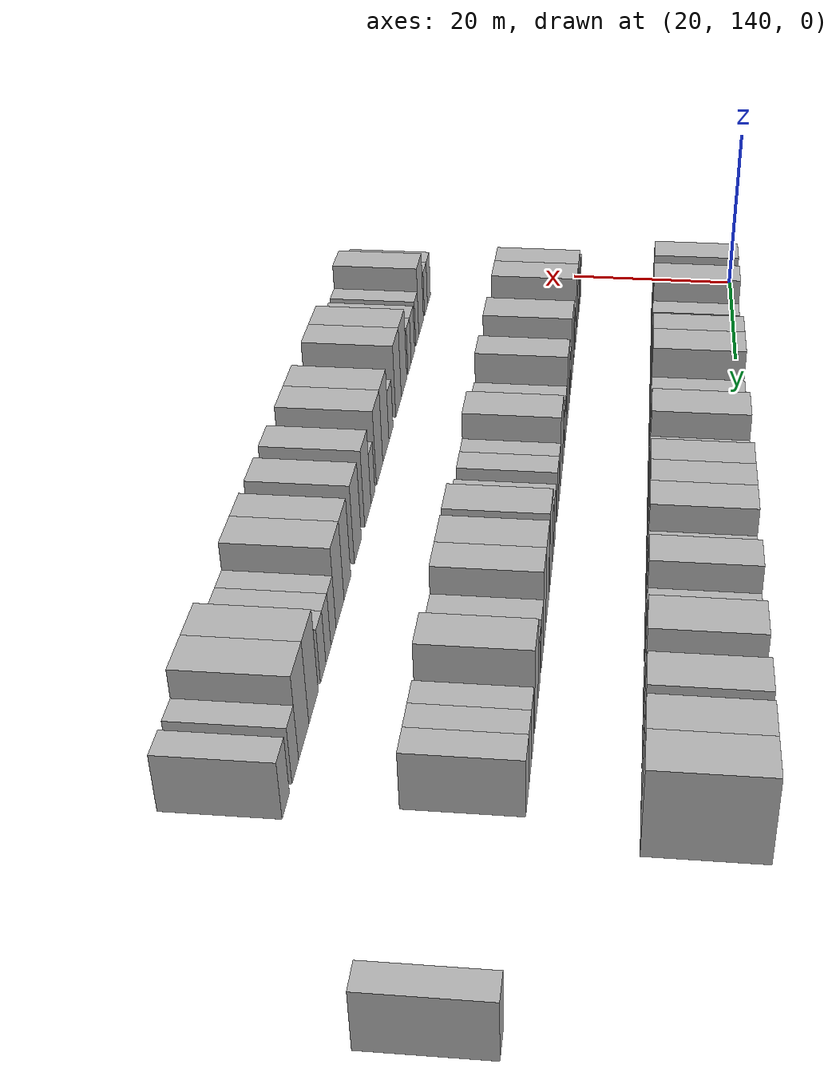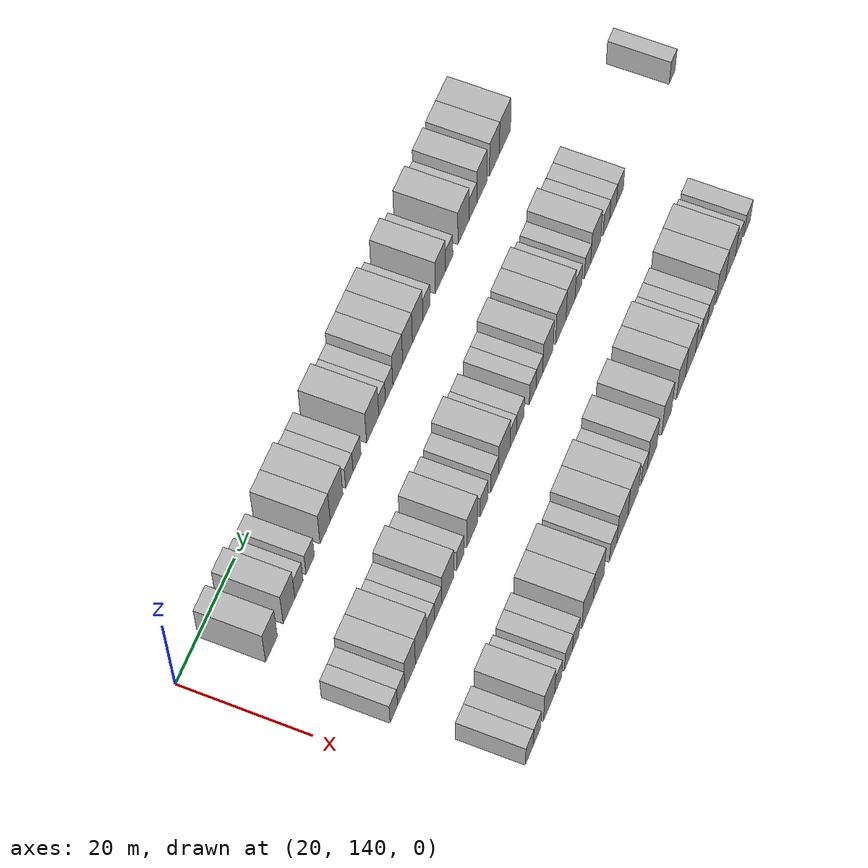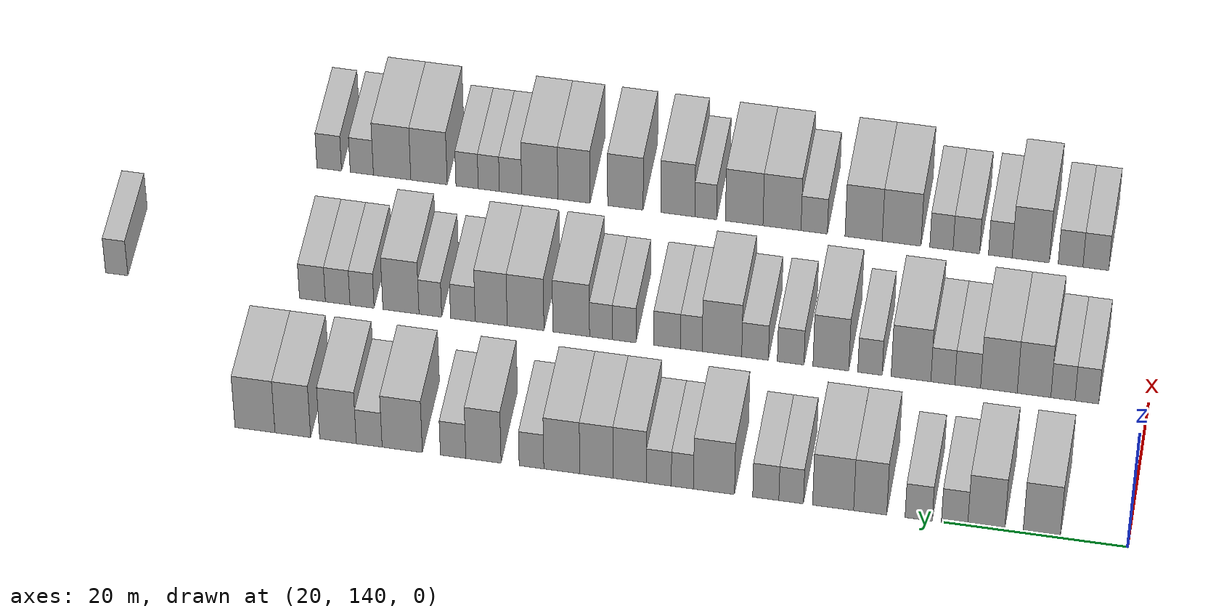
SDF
<sdf version="1.6">
 <world name="default">
  <model name="building_102">
   <static>1</static>
   <pose>25.0000 149.4287 0 0.000000 0.000000 0.000000</pose>
   <link name="link">
    <pose>0 0 4.50 0 0 0</pose>
    <collision name="collision"><geometry><box><size>10.0000 4.0342 9.0000</size></box></geometry></collision>
    <visual name="visual">
     <cast_shadows>0</cast_shadows>
     <geometry><box><size>10.0000 4.0342 9.0000</size></box></geometry>
     <material>
      <script>
       <uri>model://HANNAS_wall/materials/scripts</uri>
       <uri>model://HANNAS_wall/materials/textures</uri>
       <name>vrc/HANNAS_wall</name>
      </script>
     </material>
    </visual>
   </link>
  </model>
  <model name="building_103">
   <static>1</static>
   <pose>25.0000 155.4526 0 0.000000 0.000000 0.000000</pose>
   <link name="link">
    <pose>0 0 4.50 0 0 0</pose>
    <collision name="collision"><geometry><box><size>10.0000 4.0135 9.0000</size></box></geometry></collision>
    <visual name="visual">
     <cast_shadows>0</cast_shadows>
     <geometry><box><size>10.0000 4.0135 9.0000</size></box></geometry>
     <material>
      <script>
       <uri>model://HANNAS_wall/materials/scripts</uri>
       <uri>model://HANNAS_wall/materials/textures</uri>
       <name>vrc/HANNAS_wall</name>
      </script>
     </material>
    </visual>
   </link>
  </model>
  <model name="building_104">
   <static>1</static>
   <pose>25.0000 158.8937 0 0.000000 0.000000 0.000000</pose>
   <link name="link">
    <pose>0 0 3.00 0 0 0</pose>
    <collision name="collision"><geometry><box><size>10.0000 2.8687 6.0000</size></box></geometry></collision>
    <visual name="visual">
     <cast_shadows>0</cast_shadows>
     <geometry><box><size>10.0000 2.8687 6.0000</size></box></geometry>
     <material>
      <script>
       <uri>model://HANNAS_wall/materials/scripts</uri>
       <uri>model://HANNAS_wall/materials/textures</uri>
       <name>vrc/HANNAS_wall</name>
      </script>
     </material>
    </visual>
   </link>
  </model>
  <model name="building_105">
   <static>1</static>
   <pose>25.0000 162.8089 0 0.000000 0.000000 0.000000</pose>
   <link name="link">
    <pose>0 0 3.00 0 0 0</pose>
    <collision name="collision"><geometry><box><size>10.0000 2.9617 6.0000</size></box></geometry></collision>
    <visual name="visual">
     <cast_shadows>0</cast_shadows>
     <geometry><box><size>10.0000 2.9617 6.0000</size></box></geometry>
     <material>
      <script>
       <uri>model://HANNAS_wall/materials/scripts</uri>
       <uri>model://HANNAS_wall/materials/textures</uri>
       <name>vrc/HANNAS_wall</name>
      </script>
     </material>
    </visual>
   </link>
  </model>
  <model name="building_106">
   <static>1</static>
   <pose>25.0000 168.0981 0 0.000000 0.000000 0.000000</pose>
   <link name="link">
    <pose>0 0 4.50 0 0 0</pose>
    <collision name="collision"><geometry><box><size>10.0000 3.6167 9.0000</size></box></geometry></collision>
    <visual name="visual">
     <cast_shadows>0</cast_shadows>
     <geometry><box><size>10.0000 3.6167 9.0000</size></box></geometry>
     <material>
      <script>
       <uri>model://HANNAS_wall/materials/scripts</uri>
       <uri>model://HANNAS_wall/materials/textures</uri>
       <name>vrc/HANNAS_wall</name>
      </script>
     </material>
    </visual>
   </link>
  </model>
  <model name="building_107">
   <static>1</static>
   <pose>25.0000 172.1519 0 0.000000 0.000000 0.000000</pose>
   <link name="link">
    <pose>0 0 4.50 0 0 0</pose>
    <collision name="collision"><geometry><box><size>10.0000 4.4907 9.0000</size></box></geometry></collision>
    <visual name="visual">
     <cast_shadows>0</cast_shadows>
     <geometry><box><size>10.0000 4.4907 9.0000</size></box></geometry>
     <material>
      <script>
       <uri>model://HANNAS_wall/materials/scripts</uri>
       <uri>model://HANNAS_wall/materials/textures</uri>
       <name>vrc/HANNAS_wall</name>
      </script>
     </material>
    </visual>
   </link>
  </model>
  <model name="building_108">
   <static>1</static>
   <pose>25.0000 176.7450 0 0.000000 0.000000 0.000000</pose>
   <link name="link">
    <pose>0 0 3.00 0 0 0</pose>
    <collision name="collision"><geometry><box><size>10.0000 2.6954 6.0000</size></box></geometry></collision>
    <visual name="visual">
     <cast_shadows>0</cast_shadows>
     <geometry><box><size>10.0000 2.6954 6.0000</size></box></geometry>
     <material>
      <script>
       <uri>model://HANNAS_wall/materials/scripts</uri>
       <uri>model://HANNAS_wall/materials/textures</uri>
       <name>vrc/HANNAS_wall</name>
      </script>
     </material>
    </visual>
   </link>
  </model>
  <model name="building_109">
   <static>1</static>
   <pose>25.0000 179.5265 0 0.000000 0.000000 0.000000</pose>
   <link name="link">
    <pose>0 0 3.00 0 0 0</pose>
    <collision name="collision"><geometry><box><size>10.0000 2.8677 6.0000</size></box></geometry></collision>
    <visual name="visual">
     <cast_shadows>0</cast_shadows>
     <geometry><box><size>10.0000 2.8677 6.0000</size></box></geometry>
     <material>
      <script>
       <uri>model://HANNAS_wall/materials/scripts</uri>
       <uri>model://HANNAS_wall/materials/textures</uri>
       <name>vrc/HANNAS_wall</name>
      </script>
     </material>
    </visual>
   </link>
  </model>
  <model name="building_110">
   <static>1</static>
   <pose>25.0000 185.2100 0 0.000000 0.000000 0.000000</pose>
   <link name="link">
    <pose>0 0 4.50 0 0 0</pose>
    <collision name="collision"><geometry><box><size>10.0000 4.4993 9.0000</size></box></geometry></collision>
    <visual name="visual">
     <cast_shadows>0</cast_shadows>
     <geometry><box><size>10.0000 4.4993 9.0000</size></box></geometry>
     <material>
      <script>
       <uri>model://HANNAS_wall/materials/scripts</uri>
       <uri>model://HANNAS_wall/materials/textures</uri>
       <name>vrc/HANNAS_wall</name>
      </script>
     </material>
    </visual>
   </link>
  </model>
  <model name="building_111">
   <static>1</static>
   <pose>25.0000 188.6798 0 0.000000 0.000000 0.000000</pose>
   <link name="link">
    <pose>0 0 3.00 0 0 0</pose>
    <collision name="collision"><geometry><box><size>10.0000 2.4403 6.0000</size></box></geometry></collision>
    <visual name="visual">
     <cast_shadows>0</cast_shadows>
     <geometry><box><size>10.0000 2.4403 6.0000</size></box></geometry>
     <material>
      <script>
       <uri>model://HANNAS_wall/materials/scripts</uri>
       <uri>model://HANNAS_wall/materials/textures</uri>
       <name>vrc/HANNAS_wall</name>
      </script>
     </material>
    </visual>
   </link>
  </model>
  <model name="building_112">
   <static>1</static>
   <pose>25.0000 191.2703 0 0.000000 0.000000 0.000000</pose>
   <link name="link">
    <pose>0 0 3.00 0 0 0</pose>
    <collision name="collision"><geometry><box><size>10.0000 2.7408 6.0000</size></box></geometry></collision>
    <visual name="visual">
     <cast_shadows>0</cast_shadows>
     <geometry><box><size>10.0000 2.7408 6.0000</size></box></geometry>
     <material>
      <script>
       <uri>model://HANNAS_wall/materials/scripts</uri>
       <uri>model://HANNAS_wall/materials/textures</uri>
       <name>vrc/HANNAS_wall</name>
      </script>
     </material>
    </visual>
   </link>
  </model>
  <model name="building_113">
   <static>1</static>
   <pose>25.0000 194.4860 0 0.000000 0.000000 0.000000</pose>
   <link name="link">
    <pose>0 0 4.50 0 0 0</pose>
    <collision name="collision"><geometry><box><size>10.0000 3.6906 9.0000</size></box></geometry></collision>
    <visual name="visual">
     <cast_shadows>0</cast_shadows>
     <geometry><box><size>10.0000 3.6906 9.0000</size></box></geometry>
     <material>
      <script>
       <uri>model://HANNAS_wall/materials/scripts</uri>
       <uri>model://HANNAS_wall/materials/textures</uri>
       <name>vrc/HANNAS_wall</name>
      </script>
     </material>
    </visual>
   </link>
  </model>
  <model name="building_114">
   <static>1</static>
   <pose>25.0000 198.1640 0 0.000000 0.000000 0.000000</pose>
   <link name="link">
    <pose>0 0 4.50 0 0 0</pose>
    <collision name="collision"><geometry><box><size>10.0000 3.6653 9.0000</size></box></geometry></collision>
    <visual name="visual">
     <cast_shadows>0</cast_shadows>
     <geometry><box><size>10.0000 3.6653 9.0000</size></box></geometry>
     <material>
      <script>
       <uri>model://HANNAS_wall/materials/scripts</uri>
       <uri>model://HANNAS_wall/materials/textures</uri>
       <name>vrc/HANNAS_wall</name>
      </script>
     </material>
    </visual>
   </link>
  </model>
  <model name="building_115">
   <static>1</static>
   <pose>25.0000 201.9775 0 0.000000 0.000000 0.000000</pose>
   <link name="link">
    <pose>0 0 4.50 0 0 0</pose>
    <collision name="collision"><geometry><box><size>10.0000 3.9618 9.0000</size></box></geometry></collision>
    <visual name="visual">
     <cast_shadows>0</cast_shadows>
     <geometry><box><size>10.0000 3.9618 9.0000</size></box></geometry>
     <material>
      <script>
       <uri>model://HANNAS_wall/materials/scripts</uri>
       <uri>model://HANNAS_wall/materials/textures</uri>
       <name>vrc/HANNAS_wall</name>
      </script>
     </material>
    </visual>
   </link>
  </model>
  <model name="building_116">
   <static>1</static>
   <pose>25.0000 205.3219 0 0.000000 0.000000 0.000000</pose>
   <link name="link">
    <pose>0 0 3.00 0 0 0</pose>
    <collision name="collision"><geometry><box><size>10.0000 2.7269 6.0000</size></box></geometry></collision>
    <visual name="visual">
     <cast_shadows>0</cast_shadows>
     <geometry><box><size>10.0000 2.7269 6.0000</size></box></geometry>
     <material>
      <script>
       <uri>model://HANNAS_wall/materials/scripts</uri>
       <uri>model://HANNAS_wall/materials/textures</uri>
       <name>vrc/HANNAS_wall</name>
      </script>
     </material>
    </visual>
   </link>
  </model>
  <model name="building_117">
   <static>1</static>
   <pose>25.0000 210.6358 0 0.000000 0.000000 0.000000</pose>
   <link name="link">
    <pose>0 0 4.50 0 0 0</pose>
    <collision name="collision"><geometry><box><size>10.0000 3.9009 9.0000</size></box></geometry></collision>
    <visual name="visual">
     <cast_shadows>0</cast_shadows>
     <geometry><box><size>10.0000 3.9009 9.0000</size></box></geometry>
     <material>
      <script>
       <uri>model://HANNAS_wall/materials/scripts</uri>
       <uri>model://HANNAS_wall/materials/textures</uri>
       <name>vrc/HANNAS_wall</name>
      </script>
     </material>
    </visual>
   </link>
  </model>
  <model name="building_118">
   <static>1</static>
   <pose>25.0000 213.9976 0 0.000000 0.000000 0.000000</pose>
   <link name="link">
    <pose>0 0 3.00 0 0 0</pose>
    <collision name="collision"><geometry><box><size>10.0000 2.8227 6.0000</size></box></geometry></collision>
    <visual name="visual">
     <cast_shadows>0</cast_shadows>
     <geometry><box><size>10.0000 2.8227 6.0000</size></box></geometry>
     <material>
      <script>
       <uri>model://HANNAS_wall/materials/scripts</uri>
       <uri>model://HANNAS_wall/materials/textures</uri>
       <name>vrc/HANNAS_wall</name>
      </script>
     </material>
    </visual>
   </link>
  </model>
  <model name="building_119">
   <static>1</static>
   <pose>25.0000 219.6432 0 0.000000 0.000000 0.000000</pose>
   <link name="link">
    <pose>0 0 4.50 0 0 0</pose>
    <collision name="collision"><geometry><box><size>10.0000 4.4686 9.0000</size></box></geometry></collision>
    <visual name="visual">
     <cast_shadows>0</cast_shadows>
     <geometry><box><size>10.0000 4.4686 9.0000</size></box></geometry>
     <material>
      <script>
       <uri>model://HANNAS_wall/materials/scripts</uri>
       <uri>model://HANNAS_wall/materials/textures</uri>
       <name>vrc/HANNAS_wall</name>
      </script>
     </material>
    </visual>
   </link>
  </model>
  <model name="building_120">
   <static>1</static>
   <pose>25.0000 223.3139 0 0.000000 0.000000 0.000000</pose>
   <link name="link">
    <pose>0 0 3.00 0 0 0</pose>
    <collision name="collision"><geometry><box><size>10.0000 2.8727 6.0000</size></box></geometry></collision>
    <visual name="visual">
     <cast_shadows>0</cast_shadows>
     <geometry><box><size>10.0000 2.8727 6.0000</size></box></geometry>
     <material>
      <script>
       <uri>model://HANNAS_wall/materials/scripts</uri>
       <uri>model://HANNAS_wall/materials/textures</uri>
       <name>vrc/HANNAS_wall</name>
      </script>
     </material>
    </visual>
   </link>
  </model>
  <model name="building_121">
   <static>1</static>
   <pose>25.0000 226.7899 0 0.000000 0.000000 0.000000</pose>
   <link name="link">
    <pose>0 0 4.50 0 0 0</pose>
    <collision name="collision"><geometry><box><size>10.0000 4.0792 9.0000</size></box></geometry></collision>
    <visual name="visual">
     <cast_shadows>0</cast_shadows>
     <geometry><box><size>10.0000 4.0792 9.0000</size></box></geometry>
     <material>
      <script>
       <uri>model://HANNAS_wall/materials/scripts</uri>
       <uri>model://HANNAS_wall/materials/textures</uri>
       <name>vrc/HANNAS_wall</name>
      </script>
     </material>
    </visual>
   </link>
  </model>
  <model name="building_122">
   <static>1</static>
   <pose>25.0000 231.8167 0 0.000000 0.000000 0.000000</pose>
   <link name="link">
    <pose>0 0 4.50 0 0 0</pose>
    <collision name="collision"><geometry><box><size>10.0000 3.9744 9.0000</size></box></geometry></collision>
    <visual name="visual">
     <cast_shadows>0</cast_shadows>
     <geometry><box><size>10.0000 3.9744 9.0000</size></box></geometry>
     <material>
      <script>
       <uri>model://HANNAS_wall/materials/scripts</uri>
       <uri>model://HANNAS_wall/materials/textures</uri>
       <name>vrc/HANNAS_wall</name>
      </script>
     </material>
    </visual>
   </link>
  </model>
  <model name="building_123">
   <static>1</static>
   <pose>25.0000 236.0335 0 0.000000 0.000000 0.000000</pose>
   <link name="link">
    <pose>0 0 4.50 0 0 0</pose>
    <collision name="collision"><geometry><box><size>10.0000 4.4591 9.0000</size></box></geometry></collision>
    <visual name="visual">
     <cast_shadows>0</cast_shadows>
     <geometry><box><size>10.0000 4.4591 9.0000</size></box></geometry>
     <material>
      <script>
       <uri>model://HANNAS_wall/materials/scripts</uri>
       <uri>model://HANNAS_wall/materials/textures</uri>
       <name>vrc/HANNAS_wall</name>
      </script>
     </material>
    </visual>
   </link>
  </model>
  <model name="building_219">
   <static>1</static>
   <pose>44.0000 146.8042 0 0.000000 0.000000 0.000000</pose>
   <link name="link">
    <pose>0 0 3.00 0 0 0</pose>
    <collision name="collision"><geometry><box><size>10.0000 2.6240 6.0000</size></box></geometry></collision>
    <visual name="visual">
     <cast_shadows>0</cast_shadows>
     <geometry><box><size>10.0000 2.6240 6.0000</size></box></geometry>
     <material>
      <script>
       <uri>model://HANNAS_wall/materials/scripts</uri>
       <uri>model://HANNAS_wall/materials/textures</uri>
       <name>vrc/HANNAS_wall</name>
      </script>
     </material>
    </visual>
   </link>
  </model>
  <model name="building_220">
   <static>1</static>
   <pose>44.0000 149.4507 0 0.000000 0.000000 0.000000</pose>
   <link name="link">
    <pose>0 0 3.00 0 0 0</pose>
    <collision name="collision"><geometry><box><size>10.0000 2.6691 6.0000</size></box></geometry></collision>
    <visual name="visual">
     <cast_shadows>0</cast_shadows>
     <geometry><box><size>10.0000 2.6691 6.0000</size></box></geometry>
     <material>
      <script>
       <uri>model://HANNAS_wall/materials/scripts</uri>
       <uri>model://HANNAS_wall/materials/textures</uri>
       <name>vrc/HANNAS_wall</name>
      </script>
     </material>
    </visual>
   </link>
  </model>
  <model name="building_221">
   <static>1</static>
   <pose>44.0000 152.6465 0 0.000000 0.000000 0.000000</pose>
   <link name="link">
    <pose>0 0 4.50 0 0 0</pose>
    <collision name="collision"><geometry><box><size>10.0000 3.7224 9.0000</size></box></geometry></collision>
    <visual name="visual">
     <cast_shadows>0</cast_shadows>
     <geometry><box><size>10.0000 3.7224 9.0000</size></box></geometry>
     <material>
      <script>
       <uri>model://HANNAS_wall/materials/scripts</uri>
       <uri>model://HANNAS_wall/materials/textures</uri>
       <name>vrc/HANNAS_wall</name>
      </script>
     </material>
    </visual>
   </link>
  </model>
  <model name="building_222">
   <static>1</static>
   <pose>44.0000 156.5366 0 0.000000 0.000000 0.000000</pose>
   <link name="link">
    <pose>0 0 4.50 0 0 0</pose>
    <collision name="collision"><geometry><box><size>10.0000 4.0577 9.0000</size></box></geometry></collision>
    <visual name="visual">
     <cast_shadows>0</cast_shadows>
     <geometry><box><size>10.0000 4.0577 9.0000</size></box></geometry>
     <material>
      <script>
       <uri>model://HANNAS_wall/materials/scripts</uri>
       <uri>model://HANNAS_wall/materials/textures</uri>
       <name>vrc/HANNAS_wall</name>
      </script>
     </material>
    </visual>
   </link>
  </model>
  <model name="building_223">
   <static>1</static>
   <pose>44.0000 159.9938 0 0.000000 0.000000 0.000000</pose>
   <link name="link">
    <pose>0 0 3.00 0 0 0</pose>
    <collision name="collision"><geometry><box><size>10.0000 2.8568 6.0000</size></box></geometry></collision>
    <visual name="visual">
     <cast_shadows>0</cast_shadows>
     <geometry><box><size>10.0000 2.8568 6.0000</size></box></geometry>
     <material>
      <script>
       <uri>model://HANNAS_wall/materials/scripts</uri>
       <uri>model://HANNAS_wall/materials/textures</uri>
       <name>vrc/HANNAS_wall</name>
      </script>
     </material>
    </visual>
   </link>
  </model>
  <model name="building_224">
   <static>1</static>
   <pose>44.0000 162.7529 0 0.000000 0.000000 0.000000</pose>
   <link name="link">
    <pose>0 0 3.00 0 0 0</pose>
    <collision name="collision"><geometry><box><size>10.0000 2.6615 6.0000</size></box></geometry></collision>
    <visual name="visual">
     <cast_shadows>0</cast_shadows>
     <geometry><box><size>10.0000 2.6615 6.0000</size></box></geometry>
     <material>
      <script>
       <uri>model://HANNAS_wall/materials/scripts</uri>
       <uri>model://HANNAS_wall/materials/textures</uri>
       <name>vrc/HANNAS_wall</name>
      </script>
     </material>
    </visual>
   </link>
  </model>
  <model name="building_225">
   <static>1</static>
   <pose>44.0000 166.2893 0 0.000000 0.000000 0.000000</pose>
   <link name="link">
    <pose>0 0 4.50 0 0 0</pose>
    <collision name="collision"><geometry><box><size>10.0000 4.4113 9.0000</size></box></geometry></collision>
    <visual name="visual">
     <cast_shadows>0</cast_shadows>
     <geometry><box><size>10.0000 4.4113 9.0000</size></box></geometry>
     <material>
      <script>
       <uri>model://HANNAS_wall/materials/scripts</uri>
       <uri>model://HANNAS_wall/materials/textures</uri>
       <name>vrc/HANNAS_wall</name>
      </script>
     </material>
    </visual>
   </link>
  </model>
  <model name="building_226">
   <static>1</static>
   <pose>44.0000 170.8499 0 0.000000 0.000000 0.000000</pose>
   <link name="link">
    <pose>0 0 3.00 0 0 0</pose>
    <collision name="collision"><geometry><box><size>10.0000 2.7099 6.0000</size></box></geometry></collision>
    <visual name="visual">
     <cast_shadows>0</cast_shadows>
     <geometry><box><size>10.0000 2.7099 6.0000</size></box></geometry>
     <material>
      <script>
       <uri>model://HANNAS_wall/materials/scripts</uri>
       <uri>model://HANNAS_wall/materials/textures</uri>
       <name>vrc/HANNAS_wall</name>
      </script>
     </material>
    </visual>
   </link>
  </model>
  <model name="building_227">
   <static>1</static>
   <pose>44.0000 175.2017 0 0.000000 0.000000 0.000000</pose>
   <link name="link">
    <pose>0 0 4.50 0 0 0</pose>
    <collision name="collision"><geometry><box><size>10.0000 3.9937 9.0000</size></box></geometry></collision>
    <visual name="visual">
     <cast_shadows>0</cast_shadows>
     <geometry><box><size>10.0000 3.9937 9.0000</size></box></geometry>
     <material>
      <script>
       <uri>model://HANNAS_wall/materials/scripts</uri>
       <uri>model://HANNAS_wall/materials/textures</uri>
       <name>vrc/HANNAS_wall</name>
      </script>
     </material>
    </visual>
   </link>
  </model>
  <model name="building_228">
   <static>1</static>
   <pose>44.0000 179.6846 0 0.000000 0.000000 0.000000</pose>
   <link name="link">
    <pose>0 0 3.00 0 0 0</pose>
    <collision name="collision"><geometry><box><size>10.0000 2.9720 6.0000</size></box></geometry></collision>
    <visual name="visual">
     <cast_shadows>0</cast_shadows>
     <geometry><box><size>10.0000 2.9720 6.0000</size></box></geometry>
     <material>
      <script>
       <uri>model://HANNAS_wall/materials/scripts</uri>
       <uri>model://HANNAS_wall/materials/textures</uri>
       <name>vrc/HANNAS_wall</name>
      </script>
     </material>
    </visual>
   </link>
  </model>
  <model name="building_229">
   <static>1</static>
   <pose>44.0000 183.6609 0 0.000000 0.000000 0.000000</pose>
   <link name="link">
    <pose>0 0 3.00 0 0 0</pose>
    <collision name="collision"><geometry><box><size>10.0000 2.9806 6.0000</size></box></geometry></collision>
    <visual name="visual">
     <cast_shadows>0</cast_shadows>
     <geometry><box><size>10.0000 2.9806 6.0000</size></box></geometry>
     <material>
      <script>
       <uri>model://HANNAS_wall/materials/scripts</uri>
       <uri>model://HANNAS_wall/materials/textures</uri>
       <name>vrc/HANNAS_wall</name>
      </script>
     </material>
    </visual>
   </link>
  </model>
  <model name="building_230">
   <static>1</static>
   <pose>44.0000 187.3597 0 0.000000 0.000000 0.000000</pose>
   <link name="link">
    <pose>0 0 4.50 0 0 0</pose>
    <collision name="collision"><geometry><box><size>10.0000 4.4170 9.0000</size></box></geometry></collision>
    <visual name="visual">
     <cast_shadows>0</cast_shadows>
     <geometry><box><size>10.0000 4.4170 9.0000</size></box></geometry>
     <material>
      <script>
       <uri>model://HANNAS_wall/materials/scripts</uri>
       <uri>model://HANNAS_wall/materials/textures</uri>
       <name>vrc/HANNAS_wall</name>
      </script>
     </material>
    </visual>
   </link>
  </model>
  <model name="building_231">
   <static>1</static>
   <pose>44.0000 190.7822 0 0.000000 0.000000 0.000000</pose>
   <link name="link">
    <pose>0 0 3.00 0 0 0</pose>
    <collision name="collision"><geometry><box><size>10.0000 2.4280 6.0000</size></box></geometry></collision>
    <visual name="visual">
     <cast_shadows>0</cast_shadows>
     <geometry><box><size>10.0000 2.4280 6.0000</size></box></geometry>
     <material>
      <script>
       <uri>model://HANNAS_wall/materials/scripts</uri>
       <uri>model://HANNAS_wall/materials/textures</uri>
       <name>vrc/HANNAS_wall</name>
      </script>
     </material>
    </visual>
   </link>
  </model>
  <model name="building_232">
   <static>1</static>
   <pose>44.0000 193.4909 0 0.000000 0.000000 0.000000</pose>
   <link name="link">
    <pose>0 0 3.00 0 0 0</pose>
    <collision name="collision"><geometry><box><size>10.0000 2.9895 6.0000</size></box></geometry></collision>
    <visual name="visual">
     <cast_shadows>0</cast_shadows>
     <geometry><box><size>10.0000 2.9895 6.0000</size></box></geometry>
     <material>
      <script>
       <uri>model://HANNAS_wall/materials/scripts</uri>
       <uri>model://HANNAS_wall/materials/textures</uri>
       <name>vrc/HANNAS_wall</name>
      </script>
     </material>
    </visual>
   </link>
  </model>
  <model name="building_233">
   <static>1</static>
   <pose>44.0000 198.3148 0 0.000000 0.000000 0.000000</pose>
   <link name="link">
    <pose>0 0 3.00 0 0 0</pose>
    <collision name="collision"><geometry><box><size>10.0000 2.6583 6.0000</size></box></geometry></collision>
    <visual name="visual">
     <cast_shadows>0</cast_shadows>
     <geometry><box><size>10.0000 2.6583 6.0000</size></box></geometry>
     <material>
      <script>
       <uri>model://HANNAS_wall/materials/scripts</uri>
       <uri>model://HANNAS_wall/materials/textures</uri>
       <name>vrc/HANNAS_wall</name>
      </script>
     </material>
    </visual>
   </link>
  </model>
  <model name="building_234">
   <static>1</static>
   <pose>44.0000 200.9219 0 0.000000 0.000000 0.000000</pose>
   <link name="link">
    <pose>0 0 3.00 0 0 0</pose>
    <collision name="collision"><geometry><box><size>10.0000 2.5560 6.0000</size></box></geometry></collision>
    <visual name="visual">
     <cast_shadows>0</cast_shadows>
     <geometry><box><size>10.0000 2.5560 6.0000</size></box></geometry>
     <material>
      <script>
       <uri>model://HANNAS_wall/materials/scripts</uri>
       <uri>model://HANNAS_wall/materials/textures</uri>
       <name>vrc/HANNAS_wall</name>
      </script>
     </material>
    </visual>
   </link>
  </model>
  <model name="building_235">
   <static>1</static>
   <pose>44.0000 204.2604 0 0.000000 0.000000 0.000000</pose>
   <link name="link">
    <pose>0 0 4.50 0 0 0</pose>
    <collision name="collision"><geometry><box><size>10.0000 4.1209 9.0000</size></box></geometry></collision>
    <visual name="visual">
     <cast_shadows>0</cast_shadows>
     <geometry><box><size>10.0000 4.1209 9.0000</size></box></geometry>
     <material>
      <script>
       <uri>model://HANNAS_wall/materials/scripts</uri>
       <uri>model://HANNAS_wall/materials/textures</uri>
       <name>vrc/HANNAS_wall</name>
      </script>
     </material>
    </visual>
   </link>
  </model>
  <model name="building_236">
   <static>1</static>
   <pose>44.0000 209.3865 0 0.000000 0.000000 0.000000</pose>
   <link name="link">
    <pose>0 0 4.50 0 0 0</pose>
    <collision name="collision"><geometry><box><size>10.0000 4.1313 9.0000</size></box></geometry></collision>
    <visual name="visual">
     <cast_shadows>0</cast_shadows>
     <geometry><box><size>10.0000 4.1313 9.0000</size></box></geometry>
     <material>
      <script>
       <uri>model://HANNAS_wall/materials/scripts</uri>
       <uri>model://HANNAS_wall/materials/textures</uri>
       <name>vrc/HANNAS_wall</name>
      </script>
     </material>
    </visual>
   </link>
  </model>
  <model name="building_237">
   <static>1</static>
   <pose>44.0000 213.2594 0 0.000000 0.000000 0.000000</pose>
   <link name="link">
    <pose>0 0 4.50 0 0 0</pose>
    <collision name="collision"><geometry><box><size>10.0000 3.6143 9.0000</size></box></geometry></collision>
    <visual name="visual">
     <cast_shadows>0</cast_shadows>
     <geometry><box><size>10.0000 3.6143 9.0000</size></box></geometry>
     <material>
      <script>
       <uri>model://HANNAS_wall/materials/scripts</uri>
       <uri>model://HANNAS_wall/materials/textures</uri>
       <name>vrc/HANNAS_wall</name>
      </script>
     </material>
    </visual>
   </link>
  </model>
  <model name="building_238">
   <static>1</static>
   <pose>44.0000 216.4581 0 0.000000 0.000000 0.000000</pose>
   <link name="link">
    <pose>0 0 3.00 0 0 0</pose>
    <collision name="collision"><geometry><box><size>10.0000 2.7831 6.0000</size></box></geometry></collision>
    <visual name="visual">
     <cast_shadows>0</cast_shadows>
     <geometry><box><size>10.0000 2.7831 6.0000</size></box></geometry>
     <material>
      <script>
       <uri>model://HANNAS_wall/materials/scripts</uri>
       <uri>model://HANNAS_wall/materials/textures</uri>
       <name>vrc/HANNAS_wall</name>
      </script>
     </material>
    </visual>
   </link>
  </model>
  <model name="building_239">
   <static>1</static>
   <pose>44.0000 220.1316 0 0.000000 0.000000 0.000000</pose>
   <link name="link">
    <pose>0 0 3.00 0 0 0</pose>
    <collision name="collision"><geometry><box><size>10.0000 2.5639 6.0000</size></box></geometry></collision>
    <visual name="visual">
     <cast_shadows>0</cast_shadows>
     <geometry><box><size>10.0000 2.5639 6.0000</size></box></geometry>
     <material>
      <script>
       <uri>model://HANNAS_wall/materials/scripts</uri>
       <uri>model://HANNAS_wall/materials/textures</uri>
       <name>vrc/HANNAS_wall</name>
      </script>
     </material>
    </visual>
   </link>
  </model>
  <model name="building_240">
   <static>1</static>
   <pose>44.0000 223.4546 0 0.000000 0.000000 0.000000</pose>
   <link name="link">
    <pose>0 0 4.50 0 0 0</pose>
    <collision name="collision"><geometry><box><size>10.0000 4.0821 9.0000</size></box></geometry></collision>
    <visual name="visual">
     <cast_shadows>0</cast_shadows>
     <geometry><box><size>10.0000 4.0821 9.0000</size></box></geometry>
     <material>
      <script>
       <uri>model://HANNAS_wall/materials/scripts</uri>
       <uri>model://HANNAS_wall/materials/textures</uri>
       <name>vrc/HANNAS_wall</name>
      </script>
     </material>
    </visual>
   </link>
  </model>
  <model name="building_241">
   <static>1</static>
   <pose>44.0000 227.8583 0 0.000000 0.000000 0.000000</pose>
   <link name="link">
    <pose>0 0 3.00 0 0 0</pose>
    <collision name="collision"><geometry><box><size>10.0000 2.7251 6.0000</size></box></geometry></collision>
    <visual name="visual">
     <cast_shadows>0</cast_shadows>
     <geometry><box><size>10.0000 2.7251 6.0000</size></box></geometry>
     <material>
      <script>
       <uri>model://HANNAS_wall/materials/scripts</uri>
       <uri>model://HANNAS_wall/materials/textures</uri>
       <name>vrc/HANNAS_wall</name>
      </script>
     </material>
    </visual>
   </link>
  </model>
  <model name="building_242">
   <static>1</static>
   <pose>44.0000 230.6167 0 0.000000 0.000000 0.000000</pose>
   <link name="link">
    <pose>0 0 3.00 0 0 0</pose>
    <collision name="collision"><geometry><box><size>10.0000 2.7918 6.0000</size></box></geometry></collision>
    <visual name="visual">
     <cast_shadows>0</cast_shadows>
     <geometry><box><size>10.0000 2.7918 6.0000</size></box></geometry>
     <material>
      <script>
       <uri>model://HANNAS_wall/materials/scripts</uri>
       <uri>model://HANNAS_wall/materials/textures</uri>
       <name>vrc/HANNAS_wall</name>
      </script>
     </material>
    </visual>
   </link>
  </model>
  <model name="building_243">
   <static>1</static>
   <pose>44.0000 233.4787 0 0.000000 0.000000 0.000000</pose>
   <link name="link">
    <pose>0 0 3.00 0 0 0</pose>
    <collision name="collision"><geometry><box><size>10.0000 2.9322 6.0000</size></box></geometry></collision>
    <visual name="visual">
     <cast_shadows>0</cast_shadows>
     <geometry><box><size>10.0000 2.9322 6.0000</size></box></geometry>
     <material>
      <script>
       <uri>model://HANNAS_wall/materials/scripts</uri>
       <uri>model://HANNAS_wall/materials/textures</uri>
       <name>vrc/HANNAS_wall</name>
      </script>
     </material>
    </visual>
   </link>
  </model>
  <model name="building_244">
   <static>1</static>
   <pose>44.0000 255.7568 0 0.000000 0.000000 0.000000</pose>
   <link name="link">
    <pose>0 0 3.00 0 0 0</pose>
    <collision name="collision"><geometry><box><size>10.0000 2.5413 6.0000</size></box></geometry></collision>
    <visual name="visual">
     <cast_shadows>0</cast_shadows>
     <geometry><box><size>10.0000 2.5413 6.0000</size></box></geometry>
     <material>
      <script>
       <uri>model://HANNAS_wall/materials/scripts</uri>
       <uri>model://HANNAS_wall/materials/textures</uri>
       <name>vrc/HANNAS_wall</name>
      </script>
     </material>
    </visual>
   </link>
  </model>
  <model name="building_334">
   <static>1</static>
   <pose>63.0000 148.0902 0 0.000000 0.000000 0.000000</pose>
   <link name="link">
    <pose>0 0 3.00 0 0 0</pose>
    <collision name="collision"><geometry><box><size>10.0000 2.9026 6.0000</size></box></geometry></collision>
    <visual name="visual">
     <cast_shadows>0</cast_shadows>
     <geometry><box><size>10.0000 2.9026 6.0000</size></box></geometry>
     <material>
      <script>
       <uri>model://HANNAS_wall/materials/scripts</uri>
       <uri>model://HANNAS_wall/materials/textures</uri>
       <name>vrc/HANNAS_wall</name>
      </script>
     </material>
    </visual>
   </link>
  </model>
  <model name="building_335">
   <static>1</static>
   <pose>63.0000 150.9326 0 0.000000 0.000000 0.000000</pose>
   <link name="link">
    <pose>0 0 3.00 0 0 0</pose>
    <collision name="collision"><geometry><box><size>10.0000 2.7823 6.0000</size></box></geometry></collision>
    <visual name="visual">
     <cast_shadows>0</cast_shadows>
     <geometry><box><size>10.0000 2.7823 6.0000</size></box></geometry>
     <material>
      <script>
       <uri>model://HANNAS_wall/materials/scripts</uri>
       <uri>model://HANNAS_wall/materials/textures</uri>
       <name>vrc/HANNAS_wall</name>
      </script>
     </material>
    </visual>
   </link>
  </model>
  <model name="building_336">
   <static>1</static>
   <pose>63.0000 155.4183 0 0.000000 0.000000 0.000000</pose>
   <link name="link">
    <pose>0 0 4.50 0 0 0</pose>
    <collision name="collision"><geometry><box><size>10.0000 4.1892 9.0000</size></box></geometry></collision>
    <visual name="visual">
     <cast_shadows>0</cast_shadows>
     <geometry><box><size>10.0000 4.1892 9.0000</size></box></geometry>
     <material>
      <script>
       <uri>model://HANNAS_wall/materials/scripts</uri>
       <uri>model://HANNAS_wall/materials/textures</uri>
       <name>vrc/HANNAS_wall</name>
      </script>
     </material>
    </visual>
   </link>
  </model>
  <model name="building_337">
   <static>1</static>
   <pose>63.0000 158.8460 0 0.000000 0.000000 0.000000</pose>
   <link name="link">
    <pose>0 0 3.00 0 0 0</pose>
    <collision name="collision"><geometry><box><size>10.0000 2.6661 6.0000</size></box></geometry></collision>
    <visual name="visual">
     <cast_shadows>0</cast_shadows>
     <geometry><box><size>10.0000 2.6661 6.0000</size></box></geometry>
     <material>
      <script>
       <uri>model://HANNAS_wall/materials/scripts</uri>
       <uri>model://HANNAS_wall/materials/textures</uri>
       <name>vrc/HANNAS_wall</name>
      </script>
     </material>
    </visual>
   </link>
  </model>
  <model name="building_338">
   <static>1</static>
   <pose>63.0000 162.6777 0 0.000000 0.000000 0.000000</pose>
   <link name="link">
    <pose>0 0 3.00 0 0 0</pose>
    <collision name="collision"><geometry><box><size>10.0000 2.9974 6.0000</size></box></geometry></collision>
    <visual name="visual">
     <cast_shadows>0</cast_shadows>
     <geometry><box><size>10.0000 2.9974 6.0000</size></box></geometry>
     <material>
      <script>
       <uri>model://HANNAS_wall/materials/scripts</uri>
       <uri>model://HANNAS_wall/materials/textures</uri>
       <name>vrc/HANNAS_wall</name>
      </script>
     </material>
    </visual>
   </link>
  </model>
  <model name="building_339">
   <static>1</static>
   <pose>63.0000 165.4919 0 0.000000 0.000000 0.000000</pose>
   <link name="link">
    <pose>0 0 3.00 0 0 0</pose>
    <collision name="collision"><geometry><box><size>10.0000 2.6309 6.0000</size></box></geometry></collision>
    <visual name="visual">
     <cast_shadows>0</cast_shadows>
     <geometry><box><size>10.0000 2.6309 6.0000</size></box></geometry>
     <material>
      <script>
       <uri>model://HANNAS_wall/materials/scripts</uri>
       <uri>model://HANNAS_wall/materials/textures</uri>
       <name>vrc/HANNAS_wall</name>
      </script>
     </material>
    </visual>
   </link>
  </model>
  <model name="building_340">
   <static>1</static>
   <pose>63.0000 169.9985 0 0.000000 0.000000 0.000000</pose>
   <link name="link">
    <pose>0 0 4.50 0 0 0</pose>
    <collision name="collision"><geometry><box><size>10.0000 4.3822 9.0000</size></box></geometry></collision>
    <visual name="visual">
     <cast_shadows>0</cast_shadows>
     <geometry><box><size>10.0000 4.3822 9.0000</size></box></geometry>
     <material>
      <script>
       <uri>model://HANNAS_wall/materials/scripts</uri>
       <uri>model://HANNAS_wall/materials/textures</uri>
       <name>vrc/HANNAS_wall</name>
      </script>
     </material>
    </visual>
   </link>
  </model>
  <model name="building_341">
   <static>1</static>
   <pose>63.0000 174.2950 0 0.000000 0.000000 0.000000</pose>
   <link name="link">
    <pose>0 0 4.50 0 0 0</pose>
    <collision name="collision"><geometry><box><size>10.0000 4.2108 9.0000</size></box></geometry></collision>
    <visual name="visual">
     <cast_shadows>0</cast_shadows>
     <geometry><box><size>10.0000 4.2108 9.0000</size></box></geometry>
     <material>
      <script>
       <uri>model://HANNAS_wall/materials/scripts</uri>
       <uri>model://HANNAS_wall/materials/textures</uri>
       <name>vrc/HANNAS_wall</name>
      </script>
     </material>
    </visual>
   </link>
  </model>
  <model name="building_342">
   <static>1</static>
   <pose>63.0000 179.8989 0 0.000000 0.000000 0.000000</pose>
   <link name="link">
    <pose>0 0 3.00 0 0 0</pose>
    <collision name="collision"><geometry><box><size>10.0000 2.9970 6.0000</size></box></geometry></collision>
    <visual name="visual">
     <cast_shadows>0</cast_shadows>
     <geometry><box><size>10.0000 2.9970 6.0000</size></box></geometry>
     <material>
      <script>
       <uri>model://HANNAS_wall/materials/scripts</uri>
       <uri>model://HANNAS_wall/materials/textures</uri>
       <name>vrc/HANNAS_wall</name>
      </script>
     </material>
    </visual>
   </link>
  </model>
  <model name="building_343">
   <static>1</static>
   <pose>63.0000 183.5549 0 0.000000 0.000000 0.000000</pose>
   <link name="link">
    <pose>0 0 4.50 0 0 0</pose>
    <collision name="collision"><geometry><box><size>10.0000 4.3151 9.0000</size></box></geometry></collision>
    <visual name="visual">
     <cast_shadows>0</cast_shadows>
     <geometry><box><size>10.0000 4.3151 9.0000</size></box></geometry>
     <material>
      <script>
       <uri>model://HANNAS_wall/materials/scripts</uri>
       <uri>model://HANNAS_wall/materials/textures</uri>
       <name>vrc/HANNAS_wall</name>
      </script>
     </material>
    </visual>
   </link>
  </model>
  <model name="building_344">
   <static>1</static>
   <pose>63.0000 187.8482 0 0.000000 0.000000 0.000000</pose>
   <link name="link">
    <pose>0 0 4.50 0 0 0</pose>
    <collision name="collision"><geometry><box><size>10.0000 4.2715 9.0000</size></box></geometry></collision>
    <visual name="visual">
     <cast_shadows>0</cast_shadows>
     <geometry><box><size>10.0000 4.2715 9.0000</size></box></geometry>
     <material>
      <script>
       <uri>model://HANNAS_wall/materials/scripts</uri>
       <uri>model://HANNAS_wall/materials/textures</uri>
       <name>vrc/HANNAS_wall</name>
      </script>
     </material>
    </visual>
   </link>
  </model>
  <model name="building_345">
   <static>1</static>
   <pose>63.0000 192.2265 0 0.000000 0.000000 0.000000</pose>
   <link name="link">
    <pose>0 0 3.00 0 0 0</pose>
    <collision name="collision"><geometry><box><size>10.0000 2.4851 6.0000</size></box></geometry></collision>
    <visual name="visual">
     <cast_shadows>0</cast_shadows>
     <geometry><box><size>10.0000 2.4851 6.0000</size></box></geometry>
     <material>
      <script>
       <uri>model://HANNAS_wall/materials/scripts</uri>
       <uri>model://HANNAS_wall/materials/textures</uri>
       <name>vrc/HANNAS_wall</name>
      </script>
     </material>
    </visual>
   </link>
  </model>
  <model name="building_346">
   <static>1</static>
   <pose>63.0000 195.4156 0 0.000000 0.000000 0.000000</pose>
   <link name="link">
    <pose>0 0 4.50 0 0 0</pose>
    <collision name="collision"><geometry><box><size>10.0000 3.8930 9.0000</size></box></geometry></collision>
    <visual name="visual">
     <cast_shadows>0</cast_shadows>
     <geometry><box><size>10.0000 3.8930 9.0000</size></box></geometry>
     <material>
      <script>
       <uri>model://HANNAS_wall/materials/scripts</uri>
       <uri>model://HANNAS_wall/materials/textures</uri>
       <name>vrc/HANNAS_wall</name>
      </script>
     </material>
    </visual>
   </link>
  </model>
  <model name="building_347">
   <static>1</static>
   <pose>63.0000 201.3884 0 0.000000 0.000000 0.000000</pose>
   <link name="link">
    <pose>0 0 4.50 0 0 0</pose>
    <collision name="collision"><geometry><box><size>10.0000 4.0527 9.0000</size></box></geometry></collision>
    <visual name="visual">
     <cast_shadows>0</cast_shadows>
     <geometry><box><size>10.0000 4.0527 9.0000</size></box></geometry>
     <material>
      <script>
       <uri>model://HANNAS_wall/materials/scripts</uri>
       <uri>model://HANNAS_wall/materials/textures</uri>
       <name>vrc/HANNAS_wall</name>
      </script>
     </material>
    </visual>
   </link>
  </model>
  <model name="building_348">
   <static>1</static>
   <pose>63.0000 207.2565 0 0.000000 0.000000 0.000000</pose>
   <link name="link">
    <pose>0 0 4.50 0 0 0</pose>
    <collision name="collision"><geometry><box><size>10.0000 3.6836 9.0000</size></box></geometry></collision>
    <visual name="visual">
     <cast_shadows>0</cast_shadows>
     <geometry><box><size>10.0000 3.6836 9.0000</size></box></geometry>
     <material>
      <script>
       <uri>model://HANNAS_wall/materials/scripts</uri>
       <uri>model://HANNAS_wall/materials/textures</uri>
       <name>vrc/HANNAS_wall</name>
      </script>
     </material>
    </visual>
   </link>
  </model>
  <model name="building_349">
   <static>1</static>
   <pose>63.0000 211.1696 0 0.000000 0.000000 0.000000</pose>
   <link name="link">
    <pose>0 0 4.50 0 0 0</pose>
    <collision name="collision"><geometry><box><size>10.0000 4.1426 9.0000</size></box></geometry></collision>
    <visual name="visual">
     <cast_shadows>0</cast_shadows>
     <geometry><box><size>10.0000 4.1426 9.0000</size></box></geometry>
     <material>
      <script>
       <uri>model://HANNAS_wall/materials/scripts</uri>
       <uri>model://HANNAS_wall/materials/textures</uri>
       <name>vrc/HANNAS_wall</name>
      </script>
     </material>
    </visual>
   </link>
  </model>
  <model name="building_350">
   <static>1</static>
   <pose>63.0000 214.5233 0 0.000000 0.000000 0.000000</pose>
   <link name="link">
    <pose>0 0 3.00 0 0 0</pose>
    <collision name="collision"><geometry><box><size>10.0000 2.5649 6.0000</size></box></geometry></collision>
    <visual name="visual">
     <cast_shadows>0</cast_shadows>
     <geometry><box><size>10.0000 2.5649 6.0000</size></box></geometry>
     <material>
      <script>
       <uri>model://HANNAS_wall/materials/scripts</uri>
       <uri>model://HANNAS_wall/materials/textures</uri>
       <name>vrc/HANNAS_wall</name>
      </script>
     </material>
    </visual>
   </link>
  </model>
  <model name="building_351">
   <static>1</static>
   <pose>63.0000 217.0211 0 0.000000 0.000000 0.000000</pose>
   <link name="link">
    <pose>0 0 3.00 0 0 0</pose>
    <collision name="collision"><geometry><box><size>10.0000 2.4307 6.0000</size></box></geometry></collision>
    <visual name="visual">
     <cast_shadows>0</cast_shadows>
     <geometry><box><size>10.0000 2.4307 6.0000</size></box></geometry>
     <material>
      <script>
       <uri>model://HANNAS_wall/materials/scripts</uri>
       <uri>model://HANNAS_wall/materials/textures</uri>
       <name>vrc/HANNAS_wall</name>
      </script>
     </material>
    </visual>
   </link>
  </model>
  <model name="building_352">
   <static>1</static>
   <pose>63.0000 219.5169 0 0.000000 0.000000 0.000000</pose>
   <link name="link">
    <pose>0 0 3.00 0 0 0</pose>
    <collision name="collision"><geometry><box><size>10.0000 2.5610 6.0000</size></box></geometry></collision>
    <visual name="visual">
     <cast_shadows>0</cast_shadows>
     <geometry><box><size>10.0000 2.5610 6.0000</size></box></geometry>
     <material>
      <script>
       <uri>model://HANNAS_wall/materials/scripts</uri>
       <uri>model://HANNAS_wall/materials/textures</uri>
       <name>vrc/HANNAS_wall</name>
      </script>
     </material>
    </visual>
   </link>
  </model>
  <model name="building_353">
   <static>1</static>
   <pose>63.0000 223.8911 0 0.000000 0.000000 0.000000</pose>
   <link name="link">
    <pose>0 0 4.50 0 0 0</pose>
    <collision name="collision"><geometry><box><size>10.0000 4.1874 9.0000</size></box></geometry></collision>
    <visual name="visual">
     <cast_shadows>0</cast_shadows>
     <geometry><box><size>10.0000 4.1874 9.0000</size></box></geometry>
     <material>
      <script>
       <uri>model://HANNAS_wall/materials/scripts</uri>
       <uri>model://HANNAS_wall/materials/textures</uri>
       <name>vrc/HANNAS_wall</name>
      </script>
     </material>
    </visual>
   </link>
  </model>
  <model name="building_354">
   <static>1</static>
   <pose>63.0000 228.1392 0 0.000000 0.000000 0.000000</pose>
   <link name="link">
    <pose>0 0 4.50 0 0 0</pose>
    <collision name="collision"><geometry><box><size>10.0000 4.3088 9.0000</size></box></geometry></collision>
    <visual name="visual">
     <cast_shadows>0</cast_shadows>
     <geometry><box><size>10.0000 4.3088 9.0000</size></box></geometry>
     <material>
      <script>
       <uri>model://HANNAS_wall/materials/scripts</uri>
       <uri>model://HANNAS_wall/materials/textures</uri>
       <name>vrc/HANNAS_wall</name>
      </script>
     </material>
    </visual>
   </link>
  </model>
  <model name="building_355">
   <static>1</static>
   <pose>63.0000 231.6305 0 0.000000 0.000000 0.000000</pose>
   <link name="link">
    <pose>0 0 3.00 0 0 0</pose>
    <collision name="collision"><geometry><box><size>10.0000 2.6737 6.0000</size></box></geometry></collision>
    <visual name="visual">
     <cast_shadows>0</cast_shadows>
     <geometry><box><size>10.0000 2.6737 6.0000</size></box></geometry>
     <material>
      <script>
       <uri>model://HANNAS_wall/materials/scripts</uri>
       <uri>model://HANNAS_wall/materials/textures</uri>
       <name>vrc/HANNAS_wall</name>
      </script>
     </material>
    </visual>
   </link>
  </model>
  <model name="building_356">
   <static>1</static>
   <pose>63.0000 235.3856 0 0.000000 0.000000 0.000000</pose>
   <link name="link">
    <pose>0 0 3.00 0 0 0</pose>
    <collision name="collision"><geometry><box><size>10.0000 2.8365 6.0000</size></box></geometry></collision>
    <visual name="visual">
     <cast_shadows>0</cast_shadows>
     <geometry><box><size>10.0000 2.8365 6.0000</size></box></geometry>
     <material>
      <script>
       <uri>model://HANNAS_wall/materials/scripts</uri>
       <uri>model://HANNAS_wall/materials/textures</uri>
       <name>vrc/HANNAS_wall</name>
      </script>
     </material>
    </visual>
   </link>
  </model>
 </world>
</sdf>
